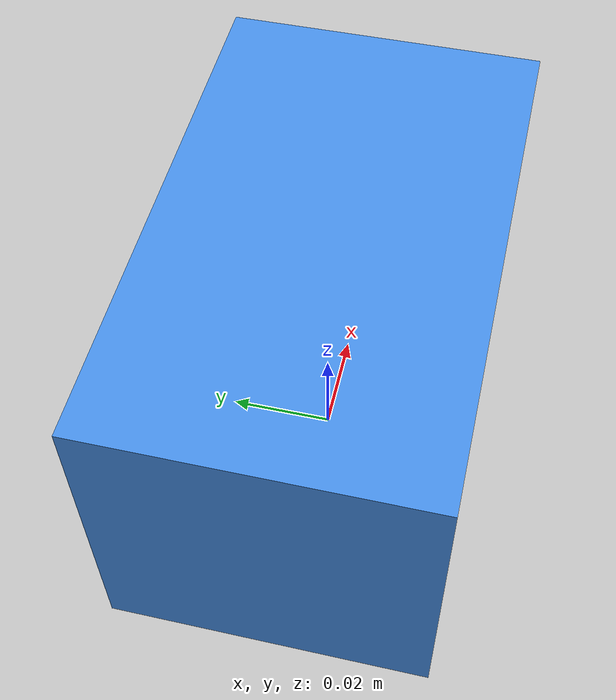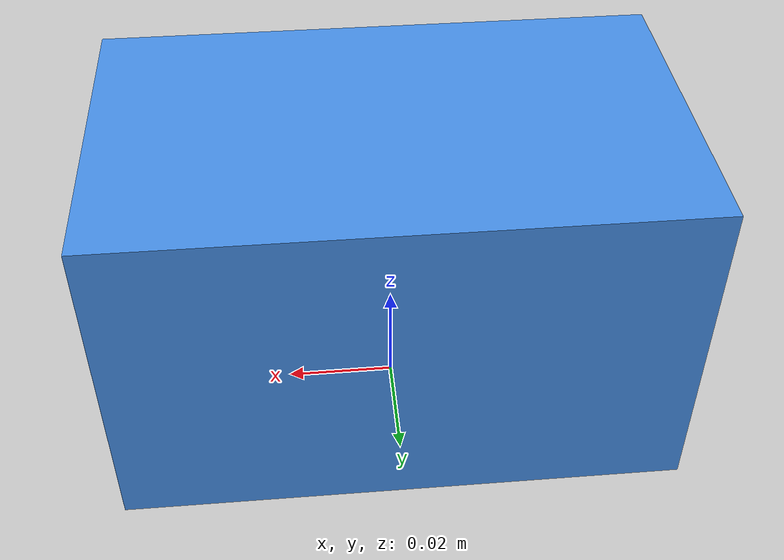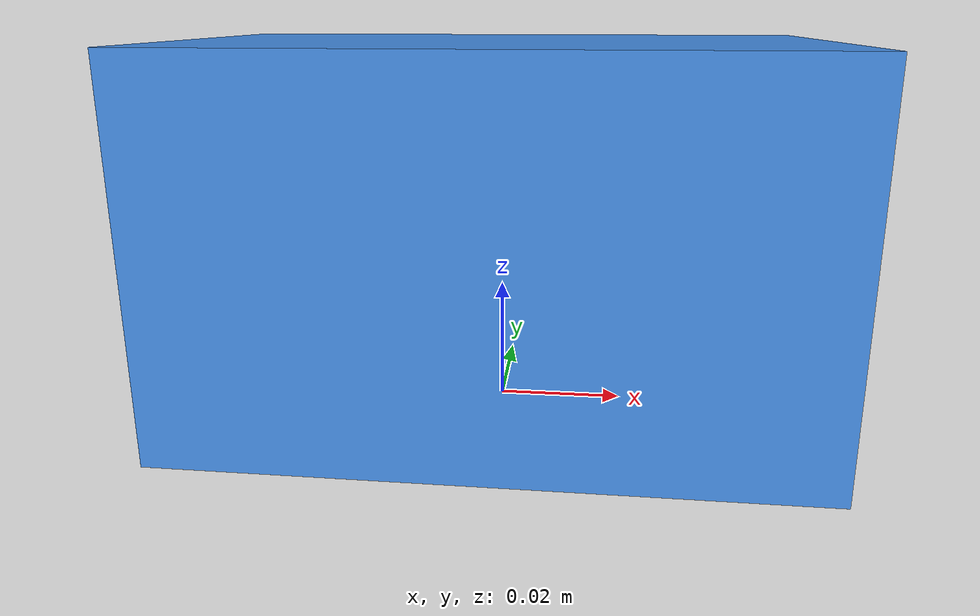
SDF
<?xml version="1.0"?>
<sdf version="1.9">
  <model name="medicine_box_small">
    <static>true</static>
    <link name="body">
      <collision name="collision">
        <pose>0 0 0.03 0 0 0</pose>
        <geometry>
          <box>
            <size>0.10 0.06 0.06</size>
          </box>
        </geometry>
      </collision>
      <visual name="visual">
        <pose>0 0 0.03 0 0 0</pose>
        <geometry>
          <box>
            <size>0.10 0.06 0.06</size>
          </box>
        </geometry>
        <material>
          <ambient>0.24 0.49 0.82 1</ambient>
          <diffuse>0.28 0.57 0.92 1</diffuse>
          <specular>0.12 0.12 0.12 1</specular>
        </material>
      </visual>
    </link>
  </model>
</sdf>
